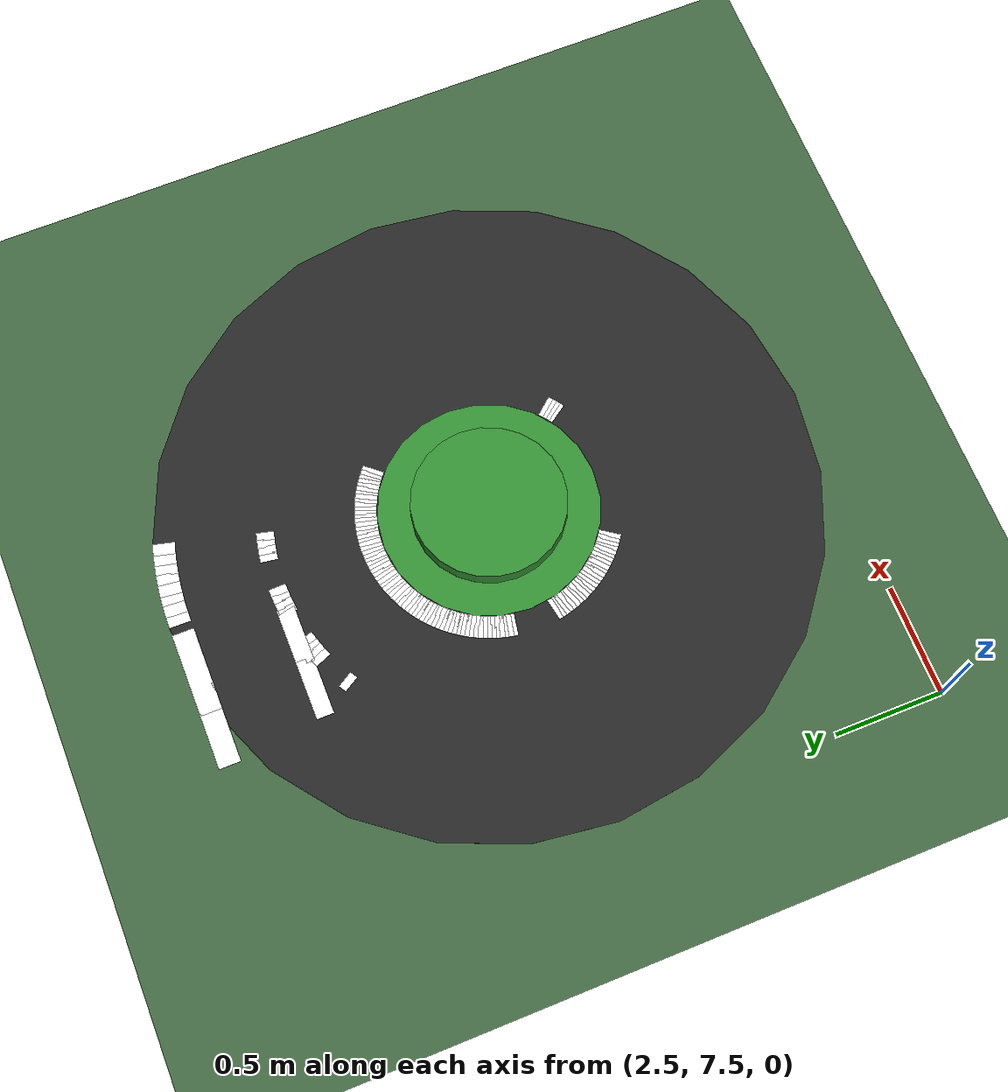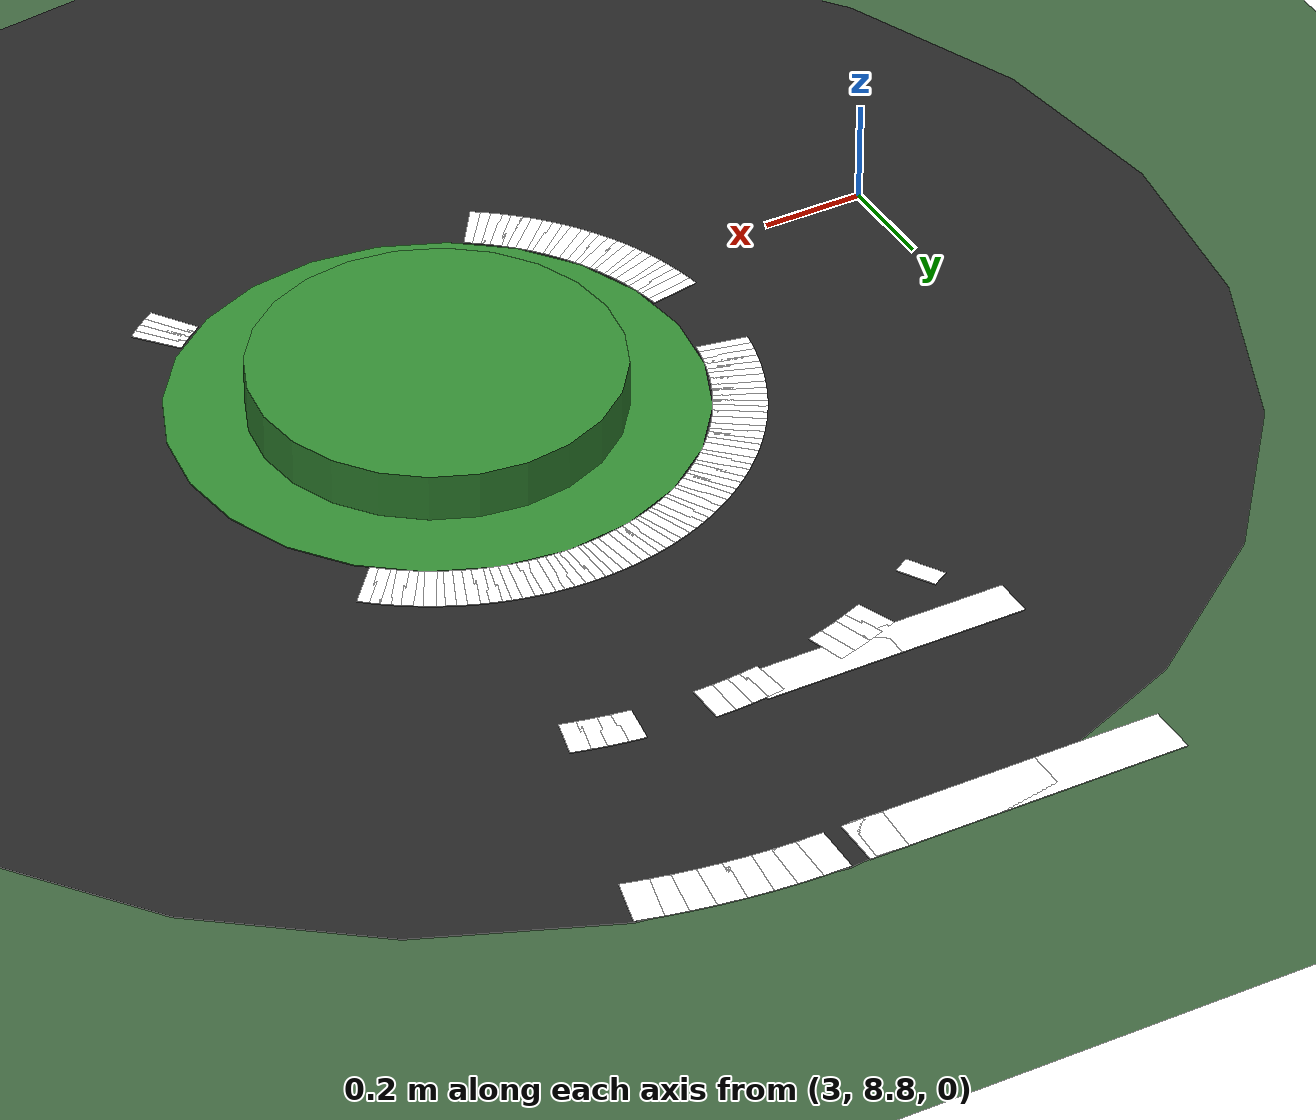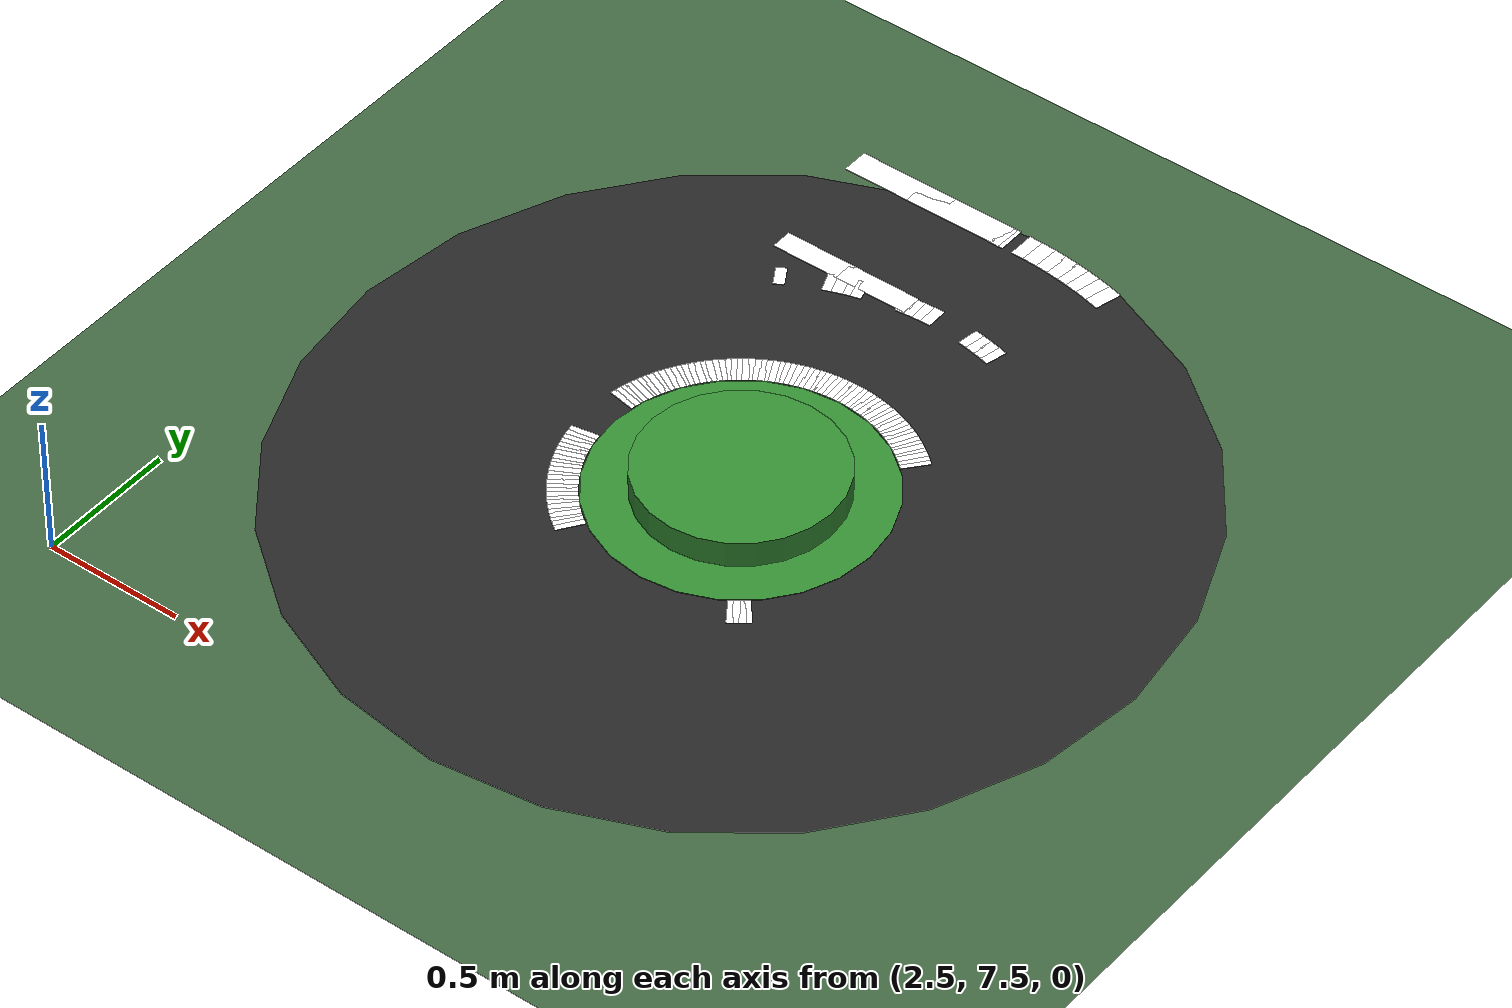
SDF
<sdf version="1.6">
 <world name="university_track">
  <model name="ground_plane">
   <static>true</static>
   <link name="link">
    <collision name="collision">
     <geometry><plane><normal>0 0 1</normal><size>200 200</size></plane></geometry>
    </collision>
    <visual name="visual">
     <geometry><plane><normal>0 0 1</normal><size>200 200</size></plane></geometry>
     <material><ambient>0.25 0.40 0.25 1</ambient><diffuse>0.25 0.40 0.25 1</diffuse></material>
    </visual>
   </link>
  </model>
  <model name="loop_re_36_0">
   <static>true</static>
   <pose>3.9151 10.4491 0.0050 0 0 3.09056</pose>
   <link name="l">
    <visual name="v">
     <geometry><box><size>0.0631 0.1000 0.0020</size></box></geometry>
     <material><ambient>1.0 1.0 1.0 1</ambient><diffuse>1.0 1.0 1.0 1</diffuse></material>
    </visual>
   </link>
  </model>
  <model name="loop_re_37_0">
   <static>true</static>
   <pose>3.7699 10.4499 0.0050 0 0 3.14121</pose>
   <link name="l">
    <visual name="v">
     <geometry><box><size>0.3833 0.1000 0.0020</size></box></geometry>
     <material><ambient>1.0 1.0 1.0 1</ambient><diffuse>1.0 1.0 1.0 1</diffuse></material>
    </visual>
   </link>
  </model>
  <model name="loop_re_38_0">
   <static>true</static>
   <pose>3.5152 10.4500 0.0050 0 0 3.14159</pose>
   <link name="l">
    <visual name="v">
     <geometry><box><size>0.3700 0.1000 0.0020</size></box></geometry>
     <material><ambient>1.0 1.0 1.0 1</ambient><diffuse>1.0 1.0 1.0 1</diffuse></material>
    </visual>
   </link>
  </model>
  <model name="loop_rb_cd_join_37">
   <static>true</static>
   <pose>3.7652 10.0000 0.0060 0 0 3.14159</pose>
   <link name="l">
    <visual name="v">
     <geometry><box><size>0.2700 0.0800 0.0020</size></box></geometry>
     <material><ambient>1.0 1.0 1.0 1</ambient><diffuse>1.0 1.0 1.0 1</diffuse></material>
    </visual>
   </link>
  </model>
  <model name="loop_rb_cd_join_38">
   <static>true</static>
   <pose>3.5152 10.0000 0.0060 0 0 3.14159</pose>
   <link name="l">
    <visual name="v">
     <geometry><box><size>0.2700 0.0800 0.0020</size></box></geometry>
     <material><ambient>1.0 1.0 1.0 1</ambient><diffuse>1.0 1.0 1.0 1</diffuse></material>
    </visual>
   </link>
  </model>
  <model name="roundabout_road">
   <static>true</static>
   <pose>4.0000 9.0000 0.0020 0 0 0</pose>
   <link name="l">
    <visual name="v">
     <geometry><cylinder><radius>1.500</radius><length>0.002</length></cylinder></geometry>
     <material><ambient>0.15 0.15 0.15 1</ambient><diffuse>0.15 0.15 0.15 1</diffuse></material>
    </visual>
   </link>
  </model>
  <model name="roundabout_inner_green">
   <static>true</static>
   <pose>4.0000 9.0000 0.0040 0 0 0</pose>
   <link name="l">
    <visual name="v">
     <geometry><cylinder><radius>0.500</radius><length>0.002</length></cylinder></geometry>
     <material><ambient>0.2 0.55 0.2 1</ambient><diffuse>0.2 0.55 0.2 1</diffuse></material>
    </visual>
   </link>
  </model>
  <model name="roundabout_inner_line_26">
   <static>true</static>
   <pose>4.3558 9.4193 0.0050 0 0 2.43801</pose>
   <link name="l">
    <visual name="v">
     <geometry><box><size>0.0224 0.1000 0.0020</size></box></geometry>
     <material><ambient>1.0 1.0 1.0 1</ambient><diffuse>1.0 1.0 1.0 1</diffuse></material>
    </visual>
   </link>
  </model>
  <model name="roundabout_inner_line_27">
   <static>true</static>
   <pose>4.3419 9.4308 0.0050 0 0 2.47073</pose>
   <link name="l">
    <visual name="v">
     <geometry><box><size>0.0224 0.1000 0.0020</size></box></geometry>
     <material><ambient>1.0 1.0 1.0 1</ambient><diffuse>1.0 1.0 1.0 1</diffuse></material>
    </visual>
   </link>
  </model>
  <model name="roundabout_inner_line_28">
   <static>true</static>
   <pose>4.3276 9.4417 0.0050 0 0 2.50346</pose>
   <link name="l">
    <visual name="v">
     <geometry><box><size>0.0224 0.1000 0.0020</size></box></geometry>
     <material><ambient>1.0 1.0 1.0 1</ambient><diffuse>1.0 1.0 1.0 1</diffuse></material>
    </visual>
   </link>
  </model>
  <model name="roundabout_inner_line_29">
   <static>true</static>
   <pose>4.3130 9.4522 0.0050 0 0 2.53618</pose>
   <link name="l">
    <visual name="v">
     <geometry><box><size>0.0224 0.1000 0.0020</size></box></geometry>
     <material><ambient>1.0 1.0 1.0 1</ambient><diffuse>1.0 1.0 1.0 1</diffuse></material>
    </visual>
   </link>
  </model>
  <model name="roundabout_inner_line_30">
   <static>true</static>
   <pose>4.2980 9.4622 0.0050 0 0 2.56891</pose>
   <link name="l">
    <visual name="v">
     <geometry><box><size>0.0224 0.1000 0.0020</size></box></geometry>
     <material><ambient>1.0 1.0 1.0 1</ambient><diffuse>1.0 1.0 1.0 1</diffuse></material>
    </visual>
   </link>
  </model>
  <model name="roundabout_inner_line_31">
   <static>true</static>
   <pose>4.2827 9.4717 0.0050 0 0 2.60163</pose>
   <link name="l">
    <visual name="v">
     <geometry><box><size>0.0224 0.1000 0.0020</size></box></geometry>
     <material><ambient>1.0 1.0 1.0 1</ambient><diffuse>1.0 1.0 1.0 1</diffuse></material>
    </visual>
   </link>
  </model>
  <model name="roundabout_inner_line_32">
   <static>true</static>
   <pose>4.2671 9.4807 0.0050 0 0 2.63436</pose>
   <link name="l">
    <visual name="v">
     <geometry><box><size>0.0224 0.1000 0.0020</size></box></geometry>
     <material><ambient>1.0 1.0 1.0 1</ambient><diffuse>1.0 1.0 1.0 1</diffuse></material>
    </visual>
   </link>
  </model>
  <model name="roundabout_inner_line_33">
   <static>true</static>
   <pose>4.2513 9.4892 0.0050 0 0 2.66708</pose>
   <link name="l">
    <visual name="v">
     <geometry><box><size>0.0224 0.1000 0.0020</size></box></geometry>
     <material><ambient>1.0 1.0 1.0 1</ambient><diffuse>1.0 1.0 1.0 1</diffuse></material>
    </visual>
   </link>
  </model>
  <model name="roundabout_inner_line_34">
   <static>true</static>
   <pose>4.2351 9.4971 0.0050 0 0 2.69981</pose>
   <link name="l">
    <visual name="v">
     <geometry><box><size>0.0224 0.1000 0.0020</size></box></geometry>
     <material><ambient>1.0 1.0 1.0 1</ambient><diffuse>1.0 1.0 1.0 1</diffuse></material>
    </visual>
   </link>
  </model>
  <model name="roundabout_inner_line_35">
   <static>true</static>
   <pose>4.2187 9.5046 0.0050 0 0 2.73253</pose>
   <link name="l">
    <visual name="v">
     <geometry><box><size>0.0224 0.1000 0.0020</size></box></geometry>
     <material><ambient>1.0 1.0 1.0 1</ambient><diffuse>1.0 1.0 1.0 1</diffuse></material>
    </visual>
   </link>
  </model>
  <model name="roundabout_inner_line_36">
   <static>true</static>
   <pose>4.2021 9.5114 0.0050 0 0 2.76526</pose>
   <link name="l">
    <visual name="v">
     <geometry><box><size>0.0224 0.1000 0.0020</size></box></geometry>
     <material><ambient>1.0 1.0 1.0 1</ambient><diffuse>1.0 1.0 1.0 1</diffuse></material>
    </visual>
   </link>
  </model>
  <model name="roundabout_inner_line_37">
   <static>true</static>
   <pose>4.1853 9.5178 0.0050 0 0 2.79798</pose>
   <link name="l">
    <visual name="v">
     <geometry><box><size>0.0224 0.1000 0.0020</size></box></geometry>
     <material><ambient>1.0 1.0 1.0 1</ambient><diffuse>1.0 1.0 1.0 1</diffuse></material>
    </visual>
   </link>
  </model>
  <model name="roundabout_inner_line_38">
   <static>true</static>
   <pose>4.1682 9.5236 0.0050 0 0 2.83071</pose>
   <link name="l">
    <visual name="v">
     <geometry><box><size>0.0224 0.1000 0.0020</size></box></geometry>
     <material><ambient>1.0 1.0 1.0 1</ambient><diffuse>1.0 1.0 1.0 1</diffuse></material>
    </visual>
   </link>
  </model>
  <model name="roundabout_inner_line_39">
   <static>true</static>
   <pose>4.1510 9.5288 0.0050 0 0 2.86343</pose>
   <link name="l">
    <visual name="v">
     <geometry><box><size>0.0224 0.1000 0.0020</size></box></geometry>
     <material><ambient>1.0 1.0 1.0 1</ambient><diffuse>1.0 1.0 1.0 1</diffuse></material>
    </visual>
   </link>
  </model>
  <model name="roundabout_inner_line_40">
   <static>true</static>
   <pose>4.1336 9.5334 0.0050 0 0 2.89616</pose>
   <link name="l">
    <visual name="v">
     <geometry><box><size>0.0224 0.1000 0.0020</size></box></geometry>
     <material><ambient>1.0 1.0 1.0 1</ambient><diffuse>1.0 1.0 1.0 1</diffuse></material>
    </visual>
   </link>
  </model>
  <model name="roundabout_inner_line_41">
   <static>true</static>
   <pose>4.1161 9.5375 0.0050 0 0 2.92888</pose>
   <link name="l">
    <visual name="v">
     <geometry><box><size>0.0224 0.1000 0.0020</size></box></geometry>
     <material><ambient>1.0 1.0 1.0 1</ambient><diffuse>1.0 1.0 1.0 1</diffuse></material>
    </visual>
   </link>
  </model>
  <model name="roundabout_inner_line_42">
   <static>true</static>
   <pose>4.0984 9.5410 0.0050 0 0 2.96161</pose>
   <link name="l">
    <visual name="v">
     <geometry><box><size>0.0224 0.1000 0.0020</size></box></geometry>
     <material><ambient>1.0 1.0 1.0 1</ambient><diffuse>1.0 1.0 1.0 1</diffuse></material>
    </visual>
   </link>
  </model>
  <model name="roundabout_inner_line_43">
   <static>true</static>
   <pose>4.0807 9.5440 0.0050 0 0 2.99433</pose>
   <link name="l">
    <visual name="v">
     <geometry><box><size>0.0224 0.1000 0.0020</size></box></geometry>
     <material><ambient>1.0 1.0 1.0 1</ambient><diffuse>1.0 1.0 1.0 1</diffuse></material>
    </visual>
   </link>
  </model>
  <model name="roundabout_inner_line_44">
   <static>true</static>
   <pose>4.0628 9.5463 0.0050 0 0 3.02706</pose>
   <link name="l">
    <visual name="v">
     <geometry><box><size>0.0224 0.1000 0.0020</size></box></geometry>
     <material><ambient>1.0 1.0 1.0 1</ambient><diffuse>1.0 1.0 1.0 1</diffuse></material>
    </visual>
   </link>
  </model>
  <model name="roundabout_inner_line_45">
   <static>true</static>
   <pose>4.0449 9.5481 0.0050 0 0 3.05978</pose>
   <link name="l">
    <visual name="v">
     <geometry><box><size>0.0224 0.1000 0.0020</size></box></geometry>
     <material><ambient>1.0 1.0 1.0 1</ambient><diffuse>1.0 1.0 1.0 1</diffuse></material>
    </visual>
   </link>
  </model>
  <model name="roundabout_inner_line_46">
   <static>true</static>
   <pose>4.0270 9.5493 0.0050 0 0 3.09251</pose>
   <link name="l">
    <visual name="v">
     <geometry><box><size>0.0224 0.1000 0.0020</size></box></geometry>
     <material><ambient>1.0 1.0 1.0 1</ambient><diffuse>1.0 1.0 1.0 1</diffuse></material>
    </visual>
   </link>
  </model>
  <model name="roundabout_inner_line_47">
   <static>true</static>
   <pose>4.0090 9.5499 0.0050 0 0 3.12523</pose>
   <link name="l">
    <visual name="v">
     <geometry><box><size>0.0224 0.1000 0.0020</size></box></geometry>
     <material><ambient>1.0 1.0 1.0 1</ambient><diffuse>1.0 1.0 1.0 1</diffuse></material>
    </visual>
   </link>
  </model>
  <model name="roundabout_inner_line_48">
   <static>true</static>
   <pose>3.9910 9.5499 0.0050 0 0 3.15796</pose>
   <link name="l">
    <visual name="v">
     <geometry><box><size>0.0224 0.1000 0.0020</size></box></geometry>
     <material><ambient>1.0 1.0 1.0 1</ambient><diffuse>1.0 1.0 1.0 1</diffuse></material>
    </visual>
   </link>
  </model>
  <model name="roundabout_inner_line_49">
   <static>true</static>
   <pose>3.9730 9.5493 0.0050 0 0 3.19068</pose>
   <link name="l">
    <visual name="v">
     <geometry><box><size>0.0224 0.1000 0.0020</size></box></geometry>
     <material><ambient>1.0 1.0 1.0 1</ambient><diffuse>1.0 1.0 1.0 1</diffuse></material>
    </visual>
   </link>
  </model>
  <model name="roundabout_inner_line_50">
   <static>true</static>
   <pose>3.9551 9.5481 0.0050 0 0 3.22340</pose>
   <link name="l">
    <visual name="v">
     <geometry><box><size>0.0224 0.1000 0.0020</size></box></geometry>
     <material><ambient>1.0 1.0 1.0 1</ambient><diffuse>1.0 1.0 1.0 1</diffuse></material>
    </visual>
   </link>
  </model>
  <model name="roundabout_inner_line_51">
   <static>true</static>
   <pose>3.9372 9.5463 0.0050 0 0 3.25613</pose>
   <link name="l">
    <visual name="v">
     <geometry><box><size>0.0224 0.1000 0.0020</size></box></geometry>
     <material><ambient>1.0 1.0 1.0 1</ambient><diffuse>1.0 1.0 1.0 1</diffuse></material>
    </visual>
   </link>
  </model>
  <model name="roundabout_inner_line_52">
   <static>true</static>
   <pose>3.9193 9.5440 0.0050 0 0 3.28885</pose>
   <link name="l">
    <visual name="v">
     <geometry><box><size>0.0224 0.1000 0.0020</size></box></geometry>
     <material><ambient>1.0 1.0 1.0 1</ambient><diffuse>1.0 1.0 1.0 1</diffuse></material>
    </visual>
   </link>
  </model>
  <model name="roundabout_inner_line_53">
   <static>true</static>
   <pose>3.9016 9.5410 0.0050 0 0 3.32158</pose>
   <link name="l">
    <visual name="v">
     <geometry><box><size>0.0224 0.1000 0.0020</size></box></geometry>
     <material><ambient>1.0 1.0 1.0 1</ambient><diffuse>1.0 1.0 1.0 1</diffuse></material>
    </visual>
   </link>
  </model>
  <model name="roundabout_inner_line_54">
   <static>true</static>
   <pose>3.8839 9.5375 0.0050 0 0 3.35430</pose>
   <link name="l">
    <visual name="v">
     <geometry><box><size>0.0224 0.1000 0.0020</size></box></geometry>
     <material><ambient>1.0 1.0 1.0 1</ambient><diffuse>1.0 1.0 1.0 1</diffuse></material>
    </visual>
   </link>
  </model>
  <model name="roundabout_inner_line_55">
   <static>true</static>
   <pose>3.8664 9.5334 0.0050 0 0 3.38703</pose>
   <link name="l">
    <visual name="v">
     <geometry><box><size>0.0224 0.1000 0.0020</size></box></geometry>
     <material><ambient>1.0 1.0 1.0 1</ambient><diffuse>1.0 1.0 1.0 1</diffuse></material>
    </visual>
   </link>
  </model>
  <model name="roundabout_inner_line_56">
   <static>true</static>
   <pose>3.8490 9.5288 0.0050 0 0 3.41975</pose>
   <link name="l">
    <visual name="v">
     <geometry><box><size>0.0224 0.1000 0.0020</size></box></geometry>
     <material><ambient>1.0 1.0 1.0 1</ambient><diffuse>1.0 1.0 1.0 1</diffuse></material>
    </visual>
   </link>
  </model>
  <model name="roundabout_inner_line_57">
   <static>true</static>
   <pose>3.8318 9.5236 0.0050 0 0 3.45248</pose>
   <link name="l">
    <visual name="v">
     <geometry><box><size>0.0224 0.1000 0.0020</size></box></geometry>
     <material><ambient>1.0 1.0 1.0 1</ambient><diffuse>1.0 1.0 1.0 1</diffuse></material>
    </visual>
   </link>
  </model>
  <model name="roundabout_inner_line_58">
   <static>true</static>
   <pose>3.8147 9.5178 0.0050 0 0 3.48520</pose>
   <link name="l">
    <visual name="v">
     <geometry><box><size>0.0224 0.1000 0.0020</size></box></geometry>
     <material><ambient>1.0 1.0 1.0 1</ambient><diffuse>1.0 1.0 1.0 1</diffuse></material>
    </visual>
   </link>
  </model>
  <model name="roundabout_inner_line_59">
   <static>true</static>
   <pose>3.7979 9.5114 0.0050 0 0 3.51793</pose>
   <link name="l">
    <visual name="v">
     <geometry><box><size>0.0224 0.1000 0.0020</size></box></geometry>
     <material><ambient>1.0 1.0 1.0 1</ambient><diffuse>1.0 1.0 1.0 1</diffuse></material>
    </visual>
   </link>
  </model>
  <model name="roundabout_inner_line_60">
   <static>true</static>
   <pose>3.7813 9.5046 0.0050 0 0 3.55065</pose>
   <link name="l">
    <visual name="v">
     <geometry><box><size>0.0224 0.1000 0.0020</size></box></geometry>
     <material><ambient>1.0 1.0 1.0 1</ambient><diffuse>1.0 1.0 1.0 1</diffuse></material>
    </visual>
   </link>
  </model>
  <model name="roundabout_inner_line_61">
   <static>true</static>
   <pose>3.7649 9.4971 0.0050 0 0 3.58338</pose>
   <link name="l">
    <visual name="v">
     <geometry><box><size>0.0224 0.1000 0.0020</size></box></geometry>
     <material><ambient>1.0 1.0 1.0 1</ambient><diffuse>1.0 1.0 1.0 1</diffuse></material>
    </visual>
   </link>
  </model>
  <model name="roundabout_inner_line_62">
   <static>true</static>
   <pose>3.7487 9.4892 0.0050 0 0 3.61610</pose>
   <link name="l">
    <visual name="v">
     <geometry><box><size>0.0224 0.1000 0.0020</size></box></geometry>
     <material><ambient>1.0 1.0 1.0 1</ambient><diffuse>1.0 1.0 1.0 1</diffuse></material>
    </visual>
   </link>
  </model>
  <model name="roundabout_inner_line_63">
   <static>true</static>
   <pose>3.7329 9.4807 0.0050 0 0 3.64883</pose>
   <link name="l">
    <visual name="v">
     <geometry><box><size>0.0224 0.1000 0.0020</size></box></geometry>
     <material><ambient>1.0 1.0 1.0 1</ambient><diffuse>1.0 1.0 1.0 1</diffuse></material>
    </visual>
   </link>
  </model>
  <model name="roundabout_inner_line_64">
   <static>true</static>
   <pose>3.7173 9.4717 0.0050 0 0 3.68155</pose>
   <link name="l">
    <visual name="v">
     <geometry><box><size>0.0224 0.1000 0.0020</size></box></geometry>
     <material><ambient>1.0 1.0 1.0 1</ambient><diffuse>1.0 1.0 1.0 1</diffuse></material>
    </visual>
   </link>
  </model>
  <model name="roundabout_inner_line_65">
   <static>true</static>
   <pose>3.7020 9.4622 0.0050 0 0 3.71428</pose>
   <link name="l">
    <visual name="v">
     <geometry><box><size>0.0224 0.1000 0.0020</size></box></geometry>
     <material><ambient>1.0 1.0 1.0 1</ambient><diffuse>1.0 1.0 1.0 1</diffuse></material>
    </visual>
   </link>
  </model>
  <model name="roundabout_inner_line_66">
   <static>true</static>
   <pose>3.6870 9.4522 0.0050 0 0 3.74700</pose>
   <link name="l">
    <visual name="v">
     <geometry><box><size>0.0224 0.1000 0.0020</size></box></geometry>
     <material><ambient>1.0 1.0 1.0 1</ambient><diffuse>1.0 1.0 1.0 1</diffuse></material>
    </visual>
   </link>
  </model>
  <model name="roundabout_inner_line_67">
   <static>true</static>
   <pose>3.6724 9.4417 0.0050 0 0 3.77973</pose>
   <link name="l">
    <visual name="v">
     <geometry><box><size>0.0224 0.1000 0.0020</size></box></geometry>
     <material><ambient>1.0 1.0 1.0 1</ambient><diffuse>1.0 1.0 1.0 1</diffuse></material>
    </visual>
   </link>
  </model>
  <model name="roundabout_inner_line_68">
   <static>true</static>
   <pose>3.6581 9.4308 0.0050 0 0 3.81245</pose>
   <link name="l">
    <visual name="v">
     <geometry><box><size>0.0224 0.1000 0.0020</size></box></geometry>
     <material><ambient>1.0 1.0 1.0 1</ambient><diffuse>1.0 1.0 1.0 1</diffuse></material>
    </visual>
   </link>
  </model>
  <model name="roundabout_inner_line_69">
   <static>true</static>
   <pose>3.6442 9.4193 0.0050 0 0 3.84518</pose>
   <link name="l">
    <visual name="v">
     <geometry><box><size>0.0224 0.1000 0.0020</size></box></geometry>
     <material><ambient>1.0 1.0 1.0 1</ambient><diffuse>1.0 1.0 1.0 1</diffuse></material>
    </visual>
   </link>
  </model>
  <model name="roundabout_inner_line_70">
   <static>true</static>
   <pose>3.6307 9.4075 0.0050 0 0 3.87790</pose>
   <link name="l">
    <visual name="v">
     <geometry><box><size>0.0224 0.1000 0.0020</size></box></geometry>
     <material><ambient>1.0 1.0 1.0 1</ambient><diffuse>1.0 1.0 1.0 1</diffuse></material>
    </visual>
   </link>
  </model>
  <model name="roundabout_inner_line_71">
   <static>true</static>
   <pose>3.6176 9.3952 0.0050 0 0 3.91063</pose>
   <link name="l">
    <visual name="v">
     <geometry><box><size>0.0224 0.1000 0.0020</size></box></geometry>
     <material><ambient>1.0 1.0 1.0 1</ambient><diffuse>1.0 1.0 1.0 1</diffuse></material>
    </visual>
   </link>
  </model>
  <model name="roundabout_inner_line_72">
   <static>true</static>
   <pose>3.6048 9.3824 0.0050 0 0 3.94335</pose>
   <link name="l">
    <visual name="v">
     <geometry><box><size>0.0224 0.1000 0.0020</size></box></geometry>
     <material><ambient>1.0 1.0 1.0 1</ambient><diffuse>1.0 1.0 1.0 1</diffuse></material>
    </visual>
   </link>
  </model>
  <model name="roundabout_inner_line_73">
   <static>true</static>
   <pose>3.5925 9.3693 0.0050 0 0 3.97608</pose>
   <link name="l">
    <visual name="v">
     <geometry><box><size>0.0224 0.1000 0.0020</size></box></geometry>
     <material><ambient>1.0 1.0 1.0 1</ambient><diffuse>1.0 1.0 1.0 1</diffuse></material>
    </visual>
   </link>
  </model>
  <model name="roundabout_inner_line_74">
   <static>true</static>
   <pose>3.5807 9.3558 0.0050 0 0 4.00880</pose>
   <link name="l">
    <visual name="v">
     <geometry><box><size>0.0224 0.1000 0.0020</size></box></geometry>
     <material><ambient>1.0 1.0 1.0 1</ambient><diffuse>1.0 1.0 1.0 1</diffuse></material>
    </visual>
   </link>
  </model>
  <model name="roundabout_inner_line_75">
   <static>true</static>
   <pose>3.5692 9.3419 0.0050 0 0 4.04153</pose>
   <link name="l">
    <visual name="v">
     <geometry><box><size>0.0224 0.1000 0.0020</size></box></geometry>
     <material><ambient>1.0 1.0 1.0 1</ambient><diffuse>1.0 1.0 1.0 1</diffuse></material>
    </visual>
   </link>
  </model>
  <model name="roundabout_inner_line_76">
   <static>true</static>
   <pose>3.5583 9.3276 0.0050 0 0 4.07425</pose>
   <link name="l">
    <visual name="v">
     <geometry><box><size>0.0224 0.1000 0.0020</size></box></geometry>
     <material><ambient>1.0 1.0 1.0 1</ambient><diffuse>1.0 1.0 1.0 1</diffuse></material>
    </visual>
   </link>
  </model>
  <model name="roundabout_inner_line_77">
   <static>true</static>
   <pose>3.5478 9.3130 0.0050 0 0 4.10698</pose>
   <link name="l">
    <visual name="v">
     <geometry><box><size>0.0224 0.1000 0.0020</size></box></geometry>
     <material><ambient>1.0 1.0 1.0 1</ambient><diffuse>1.0 1.0 1.0 1</diffuse></material>
    </visual>
   </link>
  </model>
  <model name="roundabout_inner_line_78">
   <static>true</static>
   <pose>3.5378 9.2980 0.0050 0 0 4.13970</pose>
   <link name="l">
    <visual name="v">
     <geometry><box><size>0.0224 0.1000 0.0020</size></box></geometry>
     <material><ambient>1.0 1.0 1.0 1</ambient><diffuse>1.0 1.0 1.0 1</diffuse></material>
    </visual>
   </link>
  </model>
  <model name="roundabout_inner_line_79">
   <static>true</static>
   <pose>3.5283 9.2827 0.0050 0 0 4.17243</pose>
   <link name="l">
    <visual name="v">
     <geometry><box><size>0.0224 0.1000 0.0020</size></box></geometry>
     <material><ambient>1.0 1.0 1.0 1</ambient><diffuse>1.0 1.0 1.0 1</diffuse></material>
    </visual>
   </link>
  </model>
  <model name="roundabout_inner_line_80">
   <static>true</static>
   <pose>3.5193 9.2671 0.0050 0 0 4.20515</pose>
   <link name="l">
    <visual name="v">
     <geometry><box><size>0.0224 0.1000 0.0020</size></box></geometry>
     <material><ambient>1.0 1.0 1.0 1</ambient><diffuse>1.0 1.0 1.0 1</diffuse></material>
    </visual>
   </link>
  </model>
  <model name="roundabout_inner_line_81">
   <static>true</static>
   <pose>3.5108 9.2513 0.0050 0 0 4.23788</pose>
   <link name="l">
    <visual name="v">
     <geometry><box><size>0.0224 0.1000 0.0020</size></box></geometry>
     <material><ambient>1.0 1.0 1.0 1</ambient><diffuse>1.0 1.0 1.0 1</diffuse></material>
    </visual>
   </link>
  </model>
  <model name="roundabout_inner_line_82">
   <static>true</static>
   <pose>3.5029 9.2351 0.0050 0 0 4.27060</pose>
   <link name="l">
    <visual name="v">
     <geometry><box><size>0.0224 0.1000 0.0020</size></box></geometry>
     <material><ambient>1.0 1.0 1.0 1</ambient><diffuse>1.0 1.0 1.0 1</diffuse></material>
    </visual>
   </link>
  </model>
  <model name="roundabout_inner_line_83">
   <static>true</static>
   <pose>3.4954 9.2187 0.0050 0 0 4.30333</pose>
   <link name="l">
    <visual name="v">
     <geometry><box><size>0.0224 0.1000 0.0020</size></box></geometry>
     <material><ambient>1.0 1.0 1.0 1</ambient><diffuse>1.0 1.0 1.0 1</diffuse></material>
    </visual>
   </link>
  </model>
  <model name="roundabout_inner_line_84">
   <static>true</static>
   <pose>3.4886 9.2021 0.0050 0 0 4.33605</pose>
   <link name="l">
    <visual name="v">
     <geometry><box><size>0.0224 0.1000 0.0020</size></box></geometry>
     <material><ambient>1.0 1.0 1.0 1</ambient><diffuse>1.0 1.0 1.0 1</diffuse></material>
    </visual>
   </link>
  </model>
  <model name="roundabout_inner_line_85">
   <static>true</static>
   <pose>3.4822 9.1853 0.0050 0 0 4.36878</pose>
   <link name="l">
    <visual name="v">
     <geometry><box><size>0.0224 0.1000 0.0020</size></box></geometry>
     <material><ambient>1.0 1.0 1.0 1</ambient><diffuse>1.0 1.0 1.0 1</diffuse></material>
    </visual>
   </link>
  </model>
  <model name="roundabout_inner_line_86">
   <static>true</static>
   <pose>3.4764 9.1682 0.0050 0 0 4.40150</pose>
   <link name="l">
    <visual name="v">
     <geometry><box><size>0.0224 0.1000 0.0020</size></box></geometry>
     <material><ambient>1.0 1.0 1.0 1</ambient><diffuse>1.0 1.0 1.0 1</diffuse></material>
    </visual>
   </link>
  </model>
  <model name="roundabout_inner_line_87">
   <static>true</static>
   <pose>3.4712 9.1510 0.0050 0 0 4.43423</pose>
   <link name="l">
    <visual name="v">
     <geometry><box><size>0.0224 0.1000 0.0020</size></box></geometry>
     <material><ambient>1.0 1.0 1.0 1</ambient><diffuse>1.0 1.0 1.0 1</diffuse></material>
    </visual>
   </link>
  </model>
  <model name="roundabout_inner_line_88">
   <static>true</static>
   <pose>3.4666 9.1336 0.0050 0 0 4.46695</pose>
   <link name="l">
    <visual name="v">
     <geometry><box><size>0.0224 0.1000 0.0020</size></box></geometry>
     <material><ambient>1.0 1.0 1.0 1</ambient><diffuse>1.0 1.0 1.0 1</diffuse></material>
    </visual>
   </link>
  </model>
  <model name="roundabout_inner_line_89">
   <static>true</static>
   <pose>3.4625 9.1161 0.0050 0 0 4.49968</pose>
   <link name="l">
    <visual name="v">
     <geometry><box><size>0.0224 0.1000 0.0020</size></box></geometry>
     <material><ambient>1.0 1.0 1.0 1</ambient><diffuse>1.0 1.0 1.0 1</diffuse></material>
    </visual>
   </link>
  </model>
  <model name="roundabout_inner_line_90">
   <static>true</static>
   <pose>3.4590 9.0984 0.0050 0 0 4.53240</pose>
   <link name="l">
    <visual name="v">
     <geometry><box><size>0.0224 0.1000 0.0020</size></box></geometry>
     <material><ambient>1.0 1.0 1.0 1</ambient><diffuse>1.0 1.0 1.0 1</diffuse></material>
    </visual>
   </link>
  </model>
  <model name="roundabout_inner_line_101">
   <static>true</static>
   <pose>3.4590 8.9016 0.0050 0 0 4.89238</pose>
   <link name="l">
    <visual name="v">
     <geometry><box><size>0.0224 0.1000 0.0020</size></box></geometry>
     <material><ambient>1.0 1.0 1.0 1</ambient><diffuse>1.0 1.0 1.0 1</diffuse></material>
    </visual>
   </link>
  </model>
  <model name="roundabout_inner_line_102">
   <static>true</static>
   <pose>3.4625 8.8839 0.0050 0 0 4.92510</pose>
   <link name="l">
    <visual name="v">
     <geometry><box><size>0.0224 0.1000 0.0020</size></box></geometry>
     <material><ambient>1.0 1.0 1.0 1</ambient><diffuse>1.0 1.0 1.0 1</diffuse></material>
    </visual>
   </link>
  </model>
  <model name="roundabout_inner_line_103">
   <static>true</static>
   <pose>3.4666 8.8664 0.0050 0 0 4.95783</pose>
   <link name="l">
    <visual name="v">
     <geometry><box><size>0.0224 0.1000 0.0020</size></box></geometry>
     <material><ambient>1.0 1.0 1.0 1</ambient><diffuse>1.0 1.0 1.0 1</diffuse></material>
    </visual>
   </link>
  </model>
  <model name="roundabout_inner_line_104">
   <static>true</static>
   <pose>3.4712 8.8490 0.0050 0 0 4.99055</pose>
   <link name="l">
    <visual name="v">
     <geometry><box><size>0.0224 0.1000 0.0020</size></box></geometry>
     <material><ambient>1.0 1.0 1.0 1</ambient><diffuse>1.0 1.0 1.0 1</diffuse></material>
    </visual>
   </link>
  </model>
  <model name="roundabout_inner_line_105">
   <static>true</static>
   <pose>3.4764 8.8318 0.0050 0 0 5.02328</pose>
   <link name="l">
    <visual name="v">
     <geometry><box><size>0.0224 0.1000 0.0020</size></box></geometry>
     <material><ambient>1.0 1.0 1.0 1</ambient><diffuse>1.0 1.0 1.0 1</diffuse></material>
    </visual>
   </link>
  </model>
  <model name="roundabout_inner_line_106">
   <static>true</static>
   <pose>3.4822 8.8147 0.0050 0 0 5.05600</pose>
   <link name="l">
    <visual name="v">
     <geometry><box><size>0.0224 0.1000 0.0020</size></box></geometry>
     <material><ambient>1.0 1.0 1.0 1</ambient><diffuse>1.0 1.0 1.0 1</diffuse></material>
    </visual>
   </link>
  </model>
  <model name="roundabout_inner_line_107">
   <static>true</static>
   <pose>3.4886 8.7979 0.0050 0 0 5.08873</pose>
   <link name="l">
    <visual name="v">
     <geometry><box><size>0.0224 0.1000 0.0020</size></box></geometry>
     <material><ambient>1.0 1.0 1.0 1</ambient><diffuse>1.0 1.0 1.0 1</diffuse></material>
    </visual>
   </link>
  </model>
  <model name="roundabout_inner_line_108">
   <static>true</static>
   <pose>3.4954 8.7813 0.0050 0 0 5.12145</pose>
   <link name="l">
    <visual name="v">
     <geometry><box><size>0.0224 0.1000 0.0020</size></box></geometry>
     <material><ambient>1.0 1.0 1.0 1</ambient><diffuse>1.0 1.0 1.0 1</diffuse></material>
    </visual>
   </link>
  </model>
  <model name="roundabout_inner_line_109">
   <static>true</static>
   <pose>3.5029 8.7649 0.0050 0 0 5.15418</pose>
   <link name="l">
    <visual name="v">
     <geometry><box><size>0.0224 0.1000 0.0020</size></box></geometry>
     <material><ambient>1.0 1.0 1.0 1</ambient><diffuse>1.0 1.0 1.0 1</diffuse></material>
    </visual>
   </link>
  </model>
  <model name="roundabout_inner_line_110">
   <static>true</static>
   <pose>3.5108 8.7487 0.0050 0 0 5.18690</pose>
   <link name="l">
    <visual name="v">
     <geometry><box><size>0.0224 0.1000 0.0020</size></box></geometry>
     <material><ambient>1.0 1.0 1.0 1</ambient><diffuse>1.0 1.0 1.0 1</diffuse></material>
    </visual>
   </link>
  </model>
  <model name="roundabout_inner_line_111">
   <static>true</static>
   <pose>3.5193 8.7329 0.0050 0 0 5.21963</pose>
   <link name="l">
    <visual name="v">
     <geometry><box><size>0.0224 0.1000 0.0020</size></box></geometry>
     <material><ambient>1.0 1.0 1.0 1</ambient><diffuse>1.0 1.0 1.0 1</diffuse></material>
    </visual>
   </link>
  </model>
  <model name="roundabout_inner_line_112">
   <static>true</static>
   <pose>3.5283 8.7173 0.0050 0 0 5.25235</pose>
   <link name="l">
    <visual name="v">
     <geometry><box><size>0.0224 0.1000 0.0020</size></box></geometry>
     <material><ambient>1.0 1.0 1.0 1</ambient><diffuse>1.0 1.0 1.0 1</diffuse></material>
    </visual>
   </link>
  </model>
  <model name="roundabout_inner_line_113">
   <static>true</static>
   <pose>3.5378 8.7020 0.0050 0 0 5.28508</pose>
   <link name="l">
    <visual name="v">
     <geometry><box><size>0.0224 0.1000 0.0020</size></box></geometry>
     <material><ambient>1.0 1.0 1.0 1</ambient><diffuse>1.0 1.0 1.0 1</diffuse></material>
    </visual>
   </link>
  </model>
  <model name="roundabout_inner_line_114">
   <static>true</static>
   <pose>3.5478 8.6870 0.0050 0 0 5.31780</pose>
   <link name="l">
    <visual name="v">
     <geometry><box><size>0.0224 0.1000 0.0020</size></box></geometry>
     <material><ambient>1.0 1.0 1.0 1</ambient><diffuse>1.0 1.0 1.0 1</diffuse></material>
    </visual>
   </link>
  </model>
  <model name="roundabout_inner_line_115">
   <static>true</static>
   <pose>3.5583 8.6724 0.0050 0 0 5.35052</pose>
   <link name="l">
    <visual name="v">
     <geometry><box><size>0.0224 0.1000 0.0020</size></box></geometry>
     <material><ambient>1.0 1.0 1.0 1</ambient><diffuse>1.0 1.0 1.0 1</diffuse></material>
    </visual>
   </link>
  </model>
  <model name="roundabout_inner_line_116">
   <static>true</static>
   <pose>3.5692 8.6581 0.0050 0 0 5.38325</pose>
   <link name="l">
    <visual name="v">
     <geometry><box><size>0.0224 0.1000 0.0020</size></box></geometry>
     <material><ambient>1.0 1.0 1.0 1</ambient><diffuse>1.0 1.0 1.0 1</diffuse></material>
    </visual>
   </link>
  </model>
  <model name="roundabout_inner_line_117">
   <static>true</static>
   <pose>3.5807 8.6442 0.0050 0 0 5.41597</pose>
   <link name="l">
    <visual name="v">
     <geometry><box><size>0.0224 0.1000 0.0020</size></box></geometry>
     <material><ambient>1.0 1.0 1.0 1</ambient><diffuse>1.0 1.0 1.0 1</diffuse></material>
    </visual>
   </link>
  </model>
  <model name="roundabout_inner_line_118">
   <static>true</static>
   <pose>3.5925 8.6307 0.0050 0 0 5.44870</pose>
   <link name="l">
    <visual name="v">
     <geometry><box><size>0.0224 0.1000 0.0020</size></box></geometry>
     <material><ambient>1.0 1.0 1.0 1</ambient><diffuse>1.0 1.0 1.0 1</diffuse></material>
    </visual>
   </link>
  </model>
  <model name="roundabout_inner_line_119">
   <static>true</static>
   <pose>3.6048 8.6176 0.0050 0 0 5.48142</pose>
   <link name="l">
    <visual name="v">
     <geometry><box><size>0.0224 0.1000 0.0020</size></box></geometry>
     <material><ambient>1.0 1.0 1.0 1</ambient><diffuse>1.0 1.0 1.0 1</diffuse></material>
    </visual>
   </link>
  </model>
  <model name="roundabout_inner_line_120">
   <static>true</static>
   <pose>3.6176 8.6048 0.0050 0 0 5.51415</pose>
   <link name="l">
    <visual name="v">
     <geometry><box><size>0.0224 0.1000 0.0020</size></box></geometry>
     <material><ambient>1.0 1.0 1.0 1</ambient><diffuse>1.0 1.0 1.0 1</diffuse></material>
    </visual>
   </link>
  </model>
  <model name="roundabout_inner_line_121">
   <static>true</static>
   <pose>3.6307 8.5925 0.0050 0 0 5.54687</pose>
   <link name="l">
    <visual name="v">
     <geometry><box><size>0.0224 0.1000 0.0020</size></box></geometry>
     <material><ambient>1.0 1.0 1.0 1</ambient><diffuse>1.0 1.0 1.0 1</diffuse></material>
    </visual>
   </link>
  </model>
  <model name="roundabout_inner_line_122">
   <static>true</static>
   <pose>3.6442 8.5807 0.0050 0 0 5.57960</pose>
   <link name="l">
    <visual name="v">
     <geometry><box><size>0.0224 0.1000 0.0020</size></box></geometry>
     <material><ambient>1.0 1.0 1.0 1</ambient><diffuse>1.0 1.0 1.0 1</diffuse></material>
    </visual>
   </link>
  </model>
  <model name="roundabout_inner_line_123">
   <static>true</static>
   <pose>3.6581 8.5692 0.0050 0 0 5.61232</pose>
   <link name="l">
    <visual name="v">
     <geometry><box><size>0.0224 0.1000 0.0020</size></box></geometry>
     <material><ambient>1.0 1.0 1.0 1</ambient><diffuse>1.0 1.0 1.0 1</diffuse></material>
    </visual>
   </link>
  </model>
  <model name="roundabout_inner_line_124">
   <static>true</static>
   <pose>3.6724 8.5583 0.0050 0 0 5.64505</pose>
   <link name="l">
    <visual name="v">
     <geometry><box><size>0.0224 0.1000 0.0020</size></box></geometry>
     <material><ambient>1.0 1.0 1.0 1</ambient><diffuse>1.0 1.0 1.0 1</diffuse></material>
    </visual>
   </link>
  </model>
  <model name="roundabout_inner_line_125">
   <static>true</static>
   <pose>3.6870 8.5478 0.0050 0 0 5.67777</pose>
   <link name="l">
    <visual name="v">
     <geometry><box><size>0.0224 0.1000 0.0020</size></box></geometry>
     <material><ambient>1.0 1.0 1.0 1</ambient><diffuse>1.0 1.0 1.0 1</diffuse></material>
    </visual>
   </link>
  </model>
  <model name="roundabout_inner_line_162">
   <static>true</static>
   <pose>4.3130 8.5478 0.0050 0 0 6.88860</pose>
   <link name="l">
    <visual name="v">
     <geometry><box><size>0.0224 0.1000 0.0020</size></box></geometry>
     <material><ambient>1.0 1.0 1.0 1</ambient><diffuse>1.0 1.0 1.0 1</diffuse></material>
    </visual>
   </link>
  </model>
  <model name="roundabout_inner_line_163">
   <static>true</static>
   <pose>4.3276 8.5583 0.0050 0 0 6.92132</pose>
   <link name="l">
    <visual name="v">
     <geometry><box><size>0.0224 0.1000 0.0020</size></box></geometry>
     <material><ambient>1.0 1.0 1.0 1</ambient><diffuse>1.0 1.0 1.0 1</diffuse></material>
    </visual>
   </link>
  </model>
  <model name="roundabout_inner_line_164">
   <static>true</static>
   <pose>4.3419 8.5692 0.0050 0 0 6.95405</pose>
   <link name="l">
    <visual name="v">
     <geometry><box><size>0.0224 0.1000 0.0020</size></box></geometry>
     <material><ambient>1.0 1.0 1.0 1</ambient><diffuse>1.0 1.0 1.0 1</diffuse></material>
    </visual>
   </link>
  </model>
  <model name="roundabout_inner_line_165">
   <static>true</static>
   <pose>4.3558 8.5807 0.0050 0 0 6.98677</pose>
   <link name="l">
    <visual name="v">
     <geometry><box><size>0.0224 0.1000 0.0020</size></box></geometry>
     <material><ambient>1.0 1.0 1.0 1</ambient><diffuse>1.0 1.0 1.0 1</diffuse></material>
    </visual>
   </link>
  </model>
  <model name="roundabout_outer_line_40">
   <static>true</static>
   <pose>4.3523 10.4064 0.0050 0 0 2.89616</pose>
   <link name="l">
    <visual name="v">
     <geometry><box><size>0.0542 0.1000 0.0020</size></box></geometry>
     <material><ambient>1.0 1.0 1.0 1</ambient><diffuse>1.0 1.0 1.0 1</diffuse></material>
    </visual>
   </link>
  </model>
  <model name="roundabout_outer_line_41">
   <static>true</static>
   <pose>4.3061 10.4171 0.0050 0 0 2.92888</pose>
   <link name="l">
    <visual name="v">
     <geometry><box><size>0.0542 0.1000 0.0020</size></box></geometry>
     <material><ambient>1.0 1.0 1.0 1</ambient><diffuse>1.0 1.0 1.0 1</diffuse></material>
    </visual>
   </link>
  </model>
  <model name="roundabout_outer_line_42">
   <static>true</static>
   <pose>4.2595 10.4264 0.0050 0 0 2.96161</pose>
   <link name="l">
    <visual name="v">
     <geometry><box><size>0.0542 0.1000 0.0020</size></box></geometry>
     <material><ambient>1.0 1.0 1.0 1</ambient><diffuse>1.0 1.0 1.0 1</diffuse></material>
    </visual>
   </link>
  </model>
  <model name="roundabout_outer_line_43">
   <static>true</static>
   <pose>4.2127 10.4341 0.0050 0 0 2.99433</pose>
   <link name="l">
    <visual name="v">
     <geometry><box><size>0.0542 0.1000 0.0020</size></box></geometry>
     <material><ambient>1.0 1.0 1.0 1</ambient><diffuse>1.0 1.0 1.0 1</diffuse></material>
    </visual>
   </link>
  </model>
  <model name="roundabout_outer_line_44">
   <static>true</static>
   <pose>4.1657 10.4403 0.0050 0 0 3.02706</pose>
   <link name="l">
    <visual name="v">
     <geometry><box><size>0.0542 0.1000 0.0020</size></box></geometry>
     <material><ambient>1.0 1.0 1.0 1</ambient><diffuse>1.0 1.0 1.0 1</diffuse></material>
    </visual>
   </link>
  </model>
  <model name="roundabout_outer_line_45">
   <static>true</static>
   <pose>4.1185 10.4450 0.0050 0 0 3.05978</pose>
   <link name="l">
    <visual name="v">
     <geometry><box><size>0.0542 0.1000 0.0020</size></box></geometry>
     <material><ambient>1.0 1.0 1.0 1</ambient><diffuse>1.0 1.0 1.0 1</diffuse></material>
    </visual>
   </link>
  </model>
  <model name="roundabout_outer_line_46">
   <static>true</static>
   <pose>4.0711 10.4481 0.0050 0 0 3.09251</pose>
   <link name="l">
    <visual name="v">
     <geometry><box><size>0.0542 0.1000 0.0020</size></box></geometry>
     <material><ambient>1.0 1.0 1.0 1</ambient><diffuse>1.0 1.0 1.0 1</diffuse></material>
    </visual>
   </link>
  </model>
  <model name="roundabout_outer_line_47">
   <static>true</static>
   <pose>4.0237 10.4496 0.0050 0 0 3.12523</pose>
   <link name="l">
    <visual name="v">
     <geometry><box><size>0.0542 0.1000 0.0020</size></box></geometry>
     <material><ambient>1.0 1.0 1.0 1</ambient><diffuse>1.0 1.0 1.0 1</diffuse></material>
    </visual>
   </link>
  </model>
  <model name="roundabout_center_dash_40">
   <static>true</static>
   <pose>4.2429 9.9699 0.0060 0 0 2.89616</pose>
   <link name="l">
    <visual name="v">
     <geometry><box><size>0.0383 0.0800 0.0020</size></box></geometry>
     <material><ambient>1.0 1.0 1.0 1</ambient><diffuse>1.0 1.0 1.0 1</diffuse></material>
    </visual>
   </link>
  </model>
  <model name="roundabout_center_dash_41">
   <static>true</static>
   <pose>4.2111 9.9773 0.0060 0 0 2.92888</pose>
   <link name="l">
    <visual name="v">
     <geometry><box><size>0.0383 0.0800 0.0020</size></box></geometry>
     <material><ambient>1.0 1.0 1.0 1</ambient><diffuse>1.0 1.0 1.0 1</diffuse></material>
    </visual>
   </link>
  </model>
  <model name="roundabout_center_dash_42">
   <static>true</static>
   <pose>4.1790 9.9837 0.0060 0 0 2.96161</pose>
   <link name="l">
    <visual name="v">
     <geometry><box><size>0.0383 0.0800 0.0020</size></box></geometry>
     <material><ambient>1.0 1.0 1.0 1</ambient><diffuse>1.0 1.0 1.0 1</diffuse></material>
    </visual>
   </link>
  </model>
  <model name="roundabout_center_dash_43">
   <static>true</static>
   <pose>4.1467 9.9890 0.0060 0 0 2.99433</pose>
   <link name="l">
    <visual name="v">
     <geometry><box><size>0.0383 0.0800 0.0020</size></box></geometry>
     <material><ambient>1.0 1.0 1.0 1</ambient><diffuse>1.0 1.0 1.0 1</diffuse></material>
    </visual>
   </link>
  </model>
  <model name="roundabout_center_dash_48">
   <static>true</static>
   <pose>3.9836 9.9997 0.0060 0 0 3.15796</pose>
   <link name="l">
    <visual name="v">
     <geometry><box><size>0.0383 0.0800 0.0020</size></box></geometry>
     <material><ambient>1.0 1.0 1.0 1</ambient><diffuse>1.0 1.0 1.0 1</diffuse></material>
    </visual>
   </link>
  </model>
  <model name="roundabout_center_dash_49">
   <static>true</static>
   <pose>3.9509 9.9987 0.0060 0 0 3.19068</pose>
   <link name="l">
    <visual name="v">
     <geometry><box><size>0.0383 0.0800 0.0020</size></box></geometry>
     <material><ambient>1.0 1.0 1.0 1</ambient><diffuse>1.0 1.0 1.0 1</diffuse></material>
    </visual>
   </link>
  </model>
  <model name="roundabout_center_dash_50">
   <static>true</static>
   <pose>3.9183 9.9965 0.0060 0 0 3.22340</pose>
   <link name="l">
    <visual name="v">
     <geometry><box><size>0.0383 0.0800 0.0020</size></box></geometry>
     <material><ambient>1.0 1.0 1.0 1</ambient><diffuse>1.0 1.0 1.0 1</diffuse></material>
    </visual>
   </link>
  </model>
  <model name="roundabout_center_dash_51">
   <static>true</static>
   <pose>3.8857 9.9933 0.0060 0 0 3.25613</pose>
   <link name="l">
    <visual name="v">
     <geometry><box><size>0.0383 0.0800 0.0020</size></box></geometry>
     <material><ambient>1.0 1.0 1.0 1</ambient><diffuse>1.0 1.0 1.0 1</diffuse></material>
    </visual>
   </link>
  </model>
  <model name="roundabout_center_dash_56">
   <static>true</static>
   <pose>3.7254 9.9614 0.0060 0 0 3.41975</pose>
   <link name="l">
    <visual name="v">
     <geometry><box><size>0.0383 0.0800 0.0020</size></box></geometry>
     <material><ambient>1.0 1.0 1.0 1</ambient><diffuse>1.0 1.0 1.0 1</diffuse></material>
    </visual>
   </link>
  </model>
  <model name="roundabout_center_dash_57">
   <static>true</static>
   <pose>3.6941 9.9519 0.0060 0 0 3.45248</pose>
   <link name="l">
    <visual name="v">
     <geometry><box><size>0.0383 0.0800 0.0020</size></box></geometry>
     <material><ambient>1.0 1.0 1.0 1</ambient><diffuse>1.0 1.0 1.0 1</diffuse></material>
    </visual>
   </link>
  </model>
  <model name="roundabout_center_dash_58">
   <static>true</static>
   <pose>3.6632 9.9414 0.0060 0 0 3.48520</pose>
   <link name="l">
    <visual name="v">
     <geometry><box><size>0.0383 0.0800 0.0020</size></box></geometry>
     <material><ambient>1.0 1.0 1.0 1</ambient><diffuse>1.0 1.0 1.0 1</diffuse></material>
    </visual>
   </link>
  </model>
  <model name="roundabout_center_dash_59">
   <static>true</static>
   <pose>3.6325 9.9299 0.0060 0 0 3.51793</pose>
   <link name="l">
    <visual name="v">
     <geometry><box><size>0.0383 0.0800 0.0020</size></box></geometry>
     <material><ambient>1.0 1.0 1.0 1</ambient><diffuse>1.0 1.0 1.0 1</diffuse></material>
    </visual>
   </link>
  </model>
  <model name="roundabout_center_dash_64">
   <static>true</static>
   <pose>3.4860 9.8576 0.0060 0 0 3.68155</pose>
   <link name="l">
    <visual name="v">
     <geometry><box><size>0.0383 0.0800 0.0020</size></box></geometry>
     <material><ambient>1.0 1.0 1.0 1</ambient><diffuse>1.0 1.0 1.0 1</diffuse></material>
    </visual>
   </link>
  </model>
  <model name="roundabout_island">
   <static>true</static>
   <pose>4.0000 9.0000 0.0500 0 0 0</pose>
   <link name="l">
    <collision name="collision">
     <geometry><cylinder><radius>0.350</radius><length>0.100</length></cylinder></geometry>
    </collision>
    <visual name="v">
     <geometry><cylinder><radius>0.350</radius><length>0.100</length></cylinder></geometry>
     <material><ambient>0.2 0.55 0.2 1</ambient><diffuse>0.2 0.55 0.2 1</diffuse></material>
    </visual>
   </link>
  </model>
 </world>
</sdf>
